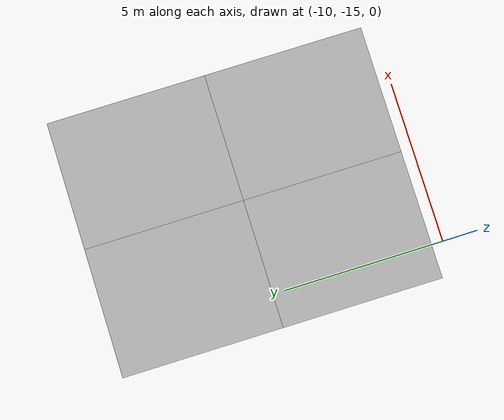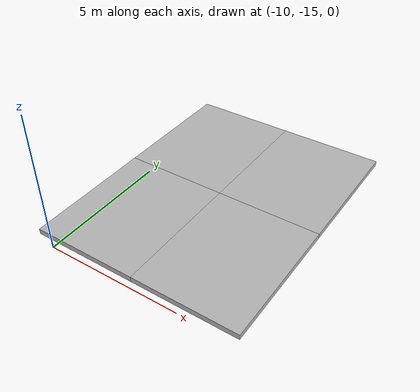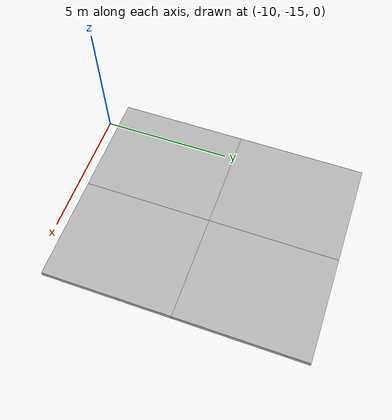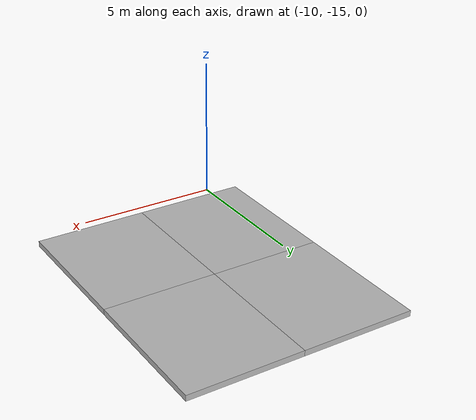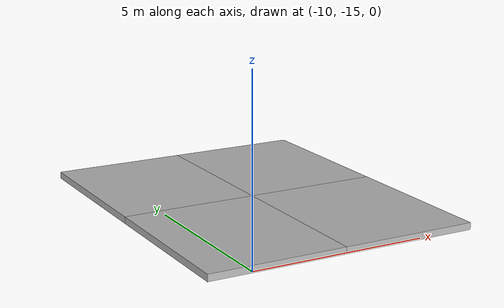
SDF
<sdf version="1.5">
 <world name="default">
  <physics name="default_physics" default="0" type="ode">
   <max_step_size>0.001</max_step_size>
   <real_time_factor>1</real_time_factor>
   <real_time_update_rate>1000</real_time_update_rate>
   <dart><collision_detector>bullet</collision_detector></dart>
  </physics>
  <gravity>0 0 -9.8</gravity>
  <magnetic_field>6e-06 2.3e-05 -4.2e-05</magnetic_field>
  <atmosphere type="adiabatic"/>
  <spherical_coordinates>
   <surface_model>EARTH_WGS84</surface_model>
   <latitude_deg>0</latitude_deg>
   <longitude_deg>0</longitude_deg>
   <elevation>0</elevation>
   <heading_deg>0</heading_deg>
  </spherical_coordinates>
  <scene>
   <sky><clouds><speed>12</speed></clouds></sky>
   <ambient>1 1 1 1</ambient>
   <shadows>1</shadows>
   <background>0.7 0.7 0.7 1</background>
  </scene>
  <include><uri>model://sun</uri></include>
  <model name="mud_box">
   <static>1</static>
   <link name="link">
    <collision name="collision">
     <geometry><box><size>8 10 0.2</size></box></geometry>
     <max_contacts>20</max_contacts>
     <surface><friction><ode><mu>0.15</mu><mu2>0.15</mu2></ode></friction></surface>
    </collision>
    <visual name="visual_1">
     <pose>-2 2.5 0 0 -0 0</pose>
     <cast_shadows>0</cast_shadows>
     <geometry><box><size>4 5 0.2</size></box></geometry>
     <material><script><uri>model://urdf/gazebo.material</uri><name>Gazebo/Dirt</name></script></material>
    </visual>
    <visual name="visual_2">
     <pose>2 2.5 0 0 -0 0</pose>
     <cast_shadows>0</cast_shadows>
     <geometry><box><size>4 5 0.2</size></box></geometry>
     <material><script><uri>model://urdf/gazebo.material</uri><name>Gazebo/Dirt</name></script></material>
    </visual>
    <visual name="visual_3">
     <pose>2 -2.5 0 0 -0 0</pose>
     <cast_shadows>0</cast_shadows>
     <geometry><box><size>4 5 0.2</size></box></geometry>
     <material><script><uri>model://urdf/gazebo.material</uri><name>Gazebo/Dirt</name></script></material>
    </visual>
    <visual name="visual_4">
     <pose>-2 -2.5 0 0 -0 0</pose>
     <cast_shadows>0</cast_shadows>
     <geometry><box><size>4 5 0.2</size></box></geometry>
     <material><script><uri>model://urdf/gazebo.material</uri><name>Gazebo/Dirt</name></script></material>
    </visual>
   </link>
   <pose>-7.04174 -9.64287 -0.09 0.0 0.0 0.0</pose>
  </model>
 </world>
</sdf>
